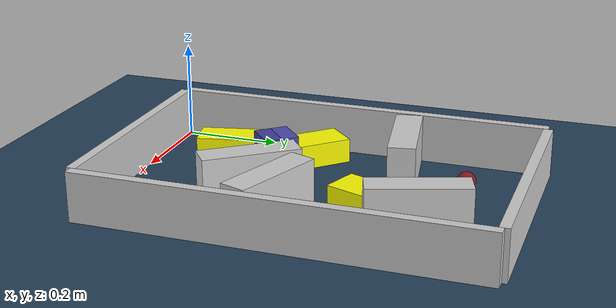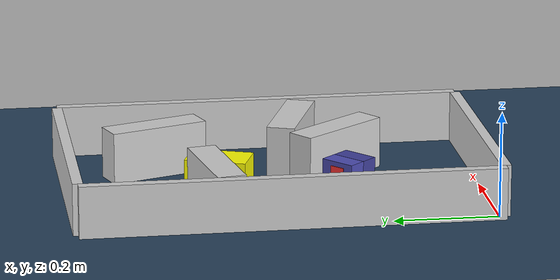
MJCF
<?xml version='1.0' encoding='utf-8'?>
<mujoco model="real_buildable">
  <compiler angle="degree" />
  <option timestep="0.002" integrator="implicitfast" iterations="100" cone="elliptic" />
  <default>
    <geom density="1" />
  </default>
  <asset>
    <texture builtin="gradient" height="3072" rgb1="0.3 0.5 0.7" rgb2="0 0 0" type="skybox" width="512" />
    <texture builtin="checker" height="300" mark="edge" markrgb="0.8 0.8 0.8" name="groundplane" rgb1="0.2 0.3 0.4" rgb2="0.1 0.2 0.3" type="2d" width="300" />
    <material name="groundplane" reflectance="0.2" texrepeat="5 5" texture="groundplane" texuniform="true" />
  </asset>
  <worldbody>
    <light dir="0 0 -1" directional="true" pos="0 0 1.5" />
    <geom name="floor" type="plane" condim="4" friction="0.5 0.005 0.001" material="groundplane" size="0 0 0.05" />
    <body name="walls">
      <geom name="wall_boundary_left" type="box" condim="4" friction="1.0 0.005 0.0001" rgba="0.8 0.8 0.8 1" pos="-0.010000 0.387500 0.050000" euler="0 0 0.000000" size="0.010000 0.397500 0.050000" />
      <geom name="wall_boundary_right" type="box" condim="4" friction="1.0 0.005 0.0001" rgba="0.8 0.8 0.8 1" pos="0.500000 0.387500 0.050000" euler="0 0 0.000000" size="0.010000 0.397500 0.050000" />
      <geom name="wall_boundary_bottom" type="box" condim="4" friction="1.0 0.005 0.0001" rgba="0.8 0.8 0.8 1" pos="0.245000 -0.010000 0.050000" euler="0 0 0.000000" size="0.245000 0.010000 0.050000" />
      <geom name="wall_boundary_top" type="box" condim="4" friction="1.0 0.005 0.0001" rgba="0.8 0.8 0.8 1" pos="0.245000 0.785000 0.050000" euler="0 0 0.000000" size="0.245000 0.010000 0.050000" />
      <geom name="wall_inner_1" type="box" condim="4" friction="1.0 0.005 0.0001" rgba="0.8 0.8 0.8 1" pos="0.299172 0.262556 0.050000" euler="0 0 -52.520843" size="0.097500 0.027500 0.050000" />
      <geom name="wall_inner_2" type="box" condim="4" friction="1.0 0.005 0.0001" rgba="0.8 0.8 0.8 1" pos="0.384918 0.336265 0.050000" euler="0 0 -20.095559" size="0.097500 0.027500 0.050000" />
      <geom name="wall_inner_3" type="box" condim="4" friction="1.0 0.005 0.0001" rgba="0.8 0.8 0.8 1" pos="0.101000 0.518000 0.050000" euler="0 0 10.000000" size="0.097500 0.027500 0.050000" />
      <geom name="wall_inner_4" type="box" condim="4" friction="1.0 0.005 0.0001" rgba="0.8 0.8 0.8 1" pos="0.354000 0.608000 0.050000" euler="0 0 109.100000" size="0.097500 0.027500 0.050000" />
    </body>
    <body name="car" pos="0.1487971022986696 0.26051489265676819 0.01" quat="0.40837988779366402 0 0 0.91281206567706719">
      <freejoint name="car_freejoint" />
      <inertial pos="0 0 0.0375" mass="0.35" diaginertia="0.000266 0.000266 0.000286" />
      <geom name="front_chassis_collision" type="box" pos="0.0175 0 0.0375" size="0.0175 0.035 0.0325" rgba="0.3 0.3 0.7 1" />
      <geom name="rear_chassis_collision" type="box" pos="-0.0175 0 0.0375" size="0.0175 0.035 0.0325" rgba="0.25 0.25 0.6 1" />
      <geom name="front_marker" type="box" pos="0.034 0 0.0505" size="0.002 0.015 0.01" rgba="1 0.2 0.2 1" contype="0" conaffinity="0" />
      <body name="rear_support_body" pos="-0.03 0 0.0025">
        <joint name="rear_caster_joint" type="ball" damping="0.0001" />
        <inertial pos="0 0 0" mass="0.025" diaginertia="0.000001 0.000001 0.000001" />
        <geom name="rear_support" type="sphere" pos="0 0 0" size="0.0025" friction="0 0 0" rgba="0.7 0.1 0.1 1" />
      </body>
      <body name="front_support_body" pos="0.03 0 0.0025">
        <joint name="front_caster_joint" type="ball" damping="0.0001" />
        <inertial pos="0 0 0" mass="0.025" diaginertia="0.000001 0.000001 0.000001" />
        <geom name="front_support" type="sphere" pos="0 0 0" size="0.0025" friction="0 0 0" rgba="0.1 0.7 0.1 1" />
      </body>
      <body name="left_wheel" pos="0 0.0375 0.015">
        <inertial pos="0 0 0" mass="0.05" diaginertia="0.000003 0.000006 0.000003" />
        <joint name="left_wheel_joint" type="hinge" axis="0 1 0" damping="0.01" armature="0.0001" />
        <geom name="left_wheel_collision" type="cylinder" size="0.015 0.0005" euler="90 0 0" rgba="0.1 0.1 0.1 1" />
      </body>
      <body name="right_wheel" pos="0 -0.0375 0.015">
        <inertial pos="0 0 0" mass="0.05" diaginertia="0.000003 0.000006 0.000003" />
        <joint name="right_wheel_joint" type="hinge" axis="0 1 0" damping="0.01" armature="0.0001" />
        <geom name="right_wheel_collision" type="cylinder" size="0.015 0.0005" euler="90 0 0" rgba="0.1 0.1 0.1 1" />
      </body>
    </body>
    <body name="obstacle_0_movable">
      <geom name="obstacle_0_movable" condim="4" pos="0.068786527947642076 0.31768151751083162 0.025000000000000001" friction="1 0.005 0.0001" rgba="1 1 0 1" size="0.037500 0.060000 0.025000" type="box" mass="0.1" quat="0.92631350996231276 0 0 0.37675360815963033" />
      <joint type="free" />
    </body>
    <body name="obstacle_1_movable">
      <geom name="obstacle_1_movable" condim="4" pos="0.28799999999999937 0.48999999999999971 0.025000000000000001" friction="1 0.005 0.0001" rgba="1 1 0 1" size="0.037500 0.060000 0.025000" type="box" mass="0.1" quat="0.98465584142245077 0 0 -0.17450751832699199" />
      <joint type="free" />
    </body>
    <body name="obstacle_2_movable">
      <geom name="obstacle_2_movable" condim="4" pos="0.077138999999999958 0.13764200000000001 0.02" friction="1 0.005 0.0001" rgba="1 1 0 1" size="0.035000 0.075000 0.020000" type="box" mass="0.1" quat="0.99417718716313486 0 0 0.10775769357404177" />
      <joint type="free" />
    </body>
    <site name="goal" type="sphere" pos="0.080000 0.640000 0.0" size="0.02" rgba="1 0 0 0.5" />
  </worldbody>
  <actuator>
    <velocity name="left_wheel_drive" joint="left_wheel_joint" ctrlrange="-25 25" kv="0.75" forcerange="-0.5 0.5" />
    <velocity name="right_wheel_drive" joint="right_wheel_joint" ctrlrange="-25 25" kv="0.75" forcerange="-0.5 0.5" />
  </actuator>
</mujoco>
